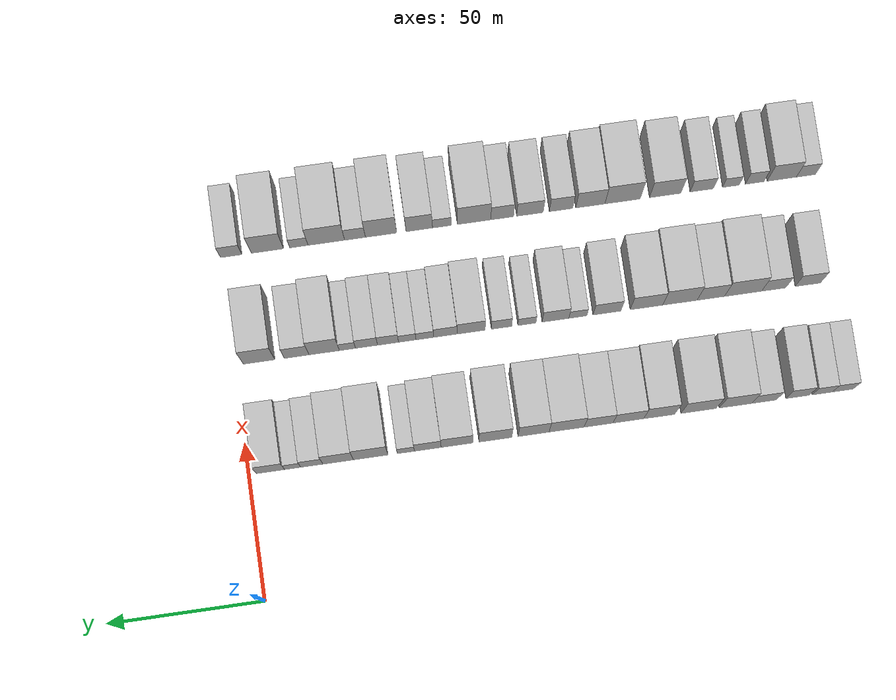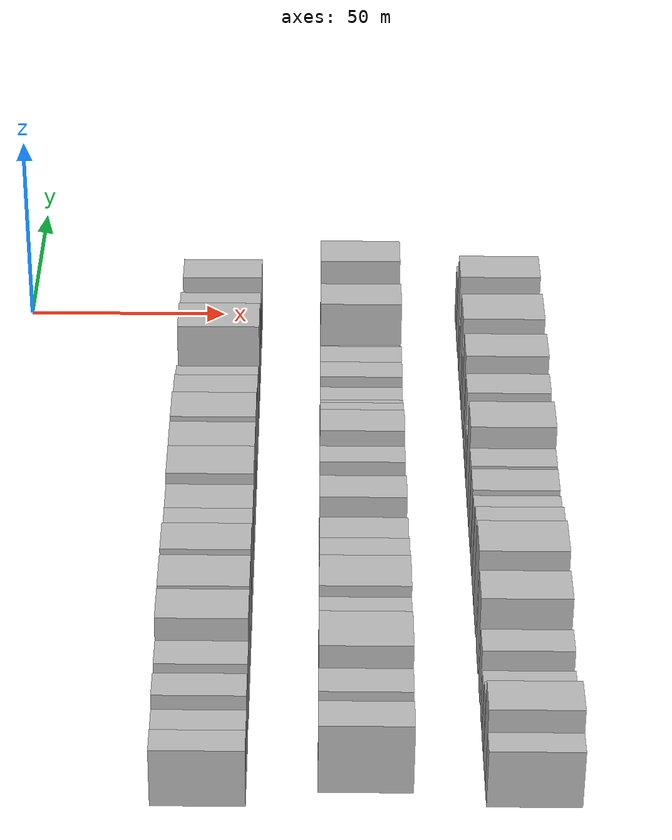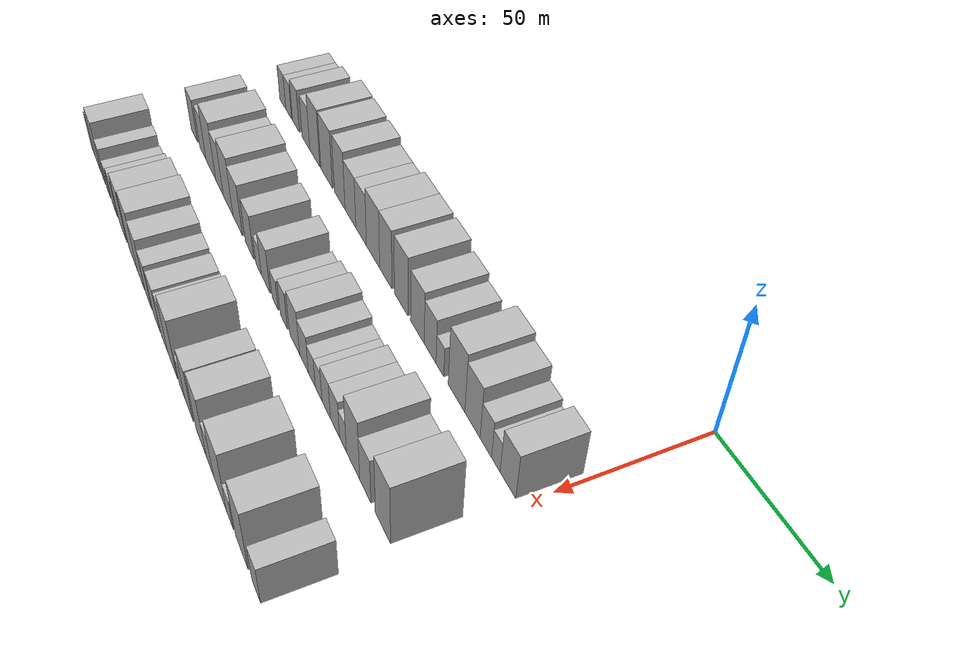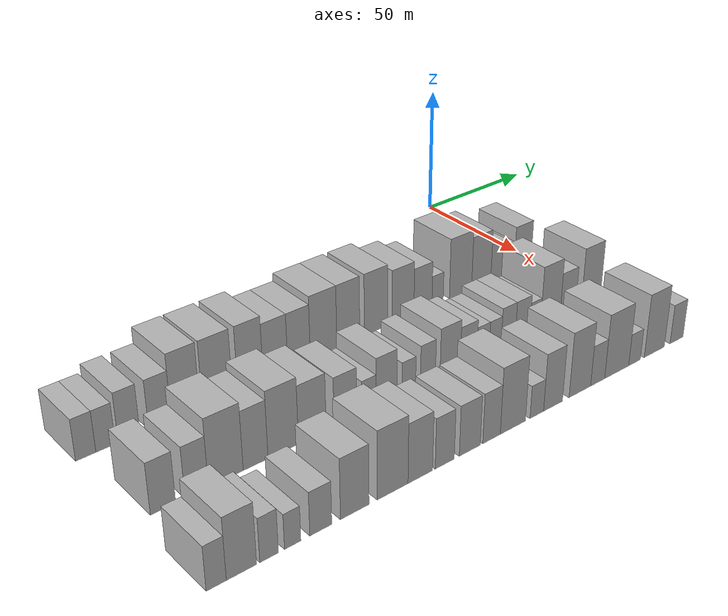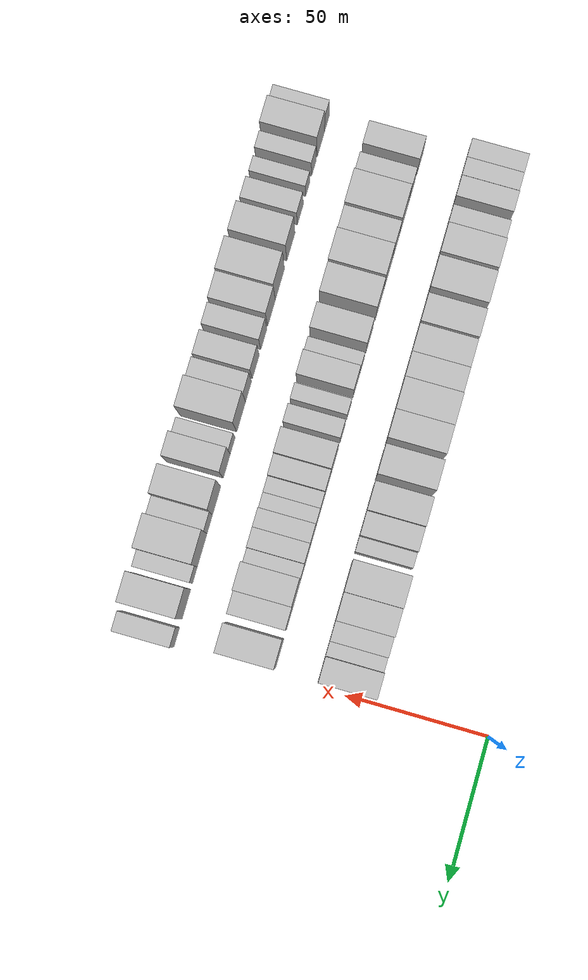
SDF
<sdf version="1.6">
 <world name="default">
  <model name="building_22">
   <static>1</static>
   <pose>50.0000 -188.7874 0 0.000000 0.000000 0.000000</pose>
   <link name="link">
    <pose>0 0 7.50 0 0 0</pose>
    <collision name="collision"><geometry><box><size>20.0000 6.6657 15.0000</size></box></geometry></collision>
    <visual name="visual">
     <cast_shadows>0</cast_shadows>
     <geometry><box><size>20.0000 6.6657 15.0000</size></box></geometry>
     <material>
      <script>
       <uri>model://HANNAS_wall/materials/scripts</uri>
       <uri>model://HANNAS_wall/materials/textures</uri>
       <name>vrc/HANNAS_wall</name>
      </script>
     </material>
    </visual>
   </link>
  </model>
  <model name="building_23">
   <static>1</static>
   <pose>50.0000 -182.2172 0 0.000000 0.000000 0.000000</pose>
   <link name="link">
    <pose>0 0 7.50 0 0 0</pose>
    <collision name="collision"><geometry><box><size>20.0000 6.4747 15.0000</size></box></geometry></collision>
    <visual name="visual">
     <cast_shadows>0</cast_shadows>
     <geometry><box><size>20.0000 6.4747 15.0000</size></box></geometry>
     <material>
      <script>
       <uri>model://HANNAS_wall/materials/scripts</uri>
       <uri>model://HANNAS_wall/materials/textures</uri>
       <name>vrc/HANNAS_wall</name>
      </script>
     </material>
    </visual>
   </link>
  </model>
  <model name="building_24">
   <static>1</static>
   <pose>50.0000 -174.2768 0 0.000000 0.000000 0.000000</pose>
   <link name="link">
    <pose>0 0 9.00 0 0 0</pose>
    <collision name="collision"><geometry><box><size>20.0000 7.4062 18.0000</size></box></geometry></collision>
    <visual name="visual">
     <cast_shadows>0</cast_shadows>
     <geometry><box><size>20.0000 7.4062 18.0000</size></box></geometry>
     <material>
      <script>
       <uri>model://HANNAS_wall/materials/scripts</uri>
       <uri>model://HANNAS_wall/materials/textures</uri>
       <name>vrc/HANNAS_wall</name>
      </script>
     </material>
    </visual>
   </link>
  </model>
  <model name="building_25">
   <static>1</static>
   <pose>50.0000 -163.5895 0 0.000000 0.000000 0.000000</pose>
   <link name="link">
    <pose>0 0 9.00 0 0 0</pose>
    <collision name="collision"><geometry><box><size>20.0000 7.9683 18.0000</size></box></geometry></collision>
    <visual name="visual">
     <cast_shadows>0</cast_shadows>
     <geometry><box><size>20.0000 7.9683 18.0000</size></box></geometry>
     <material>
      <script>
       <uri>model://HANNAS_wall/materials/scripts</uri>
       <uri>model://HANNAS_wall/materials/textures</uri>
       <name>vrc/HANNAS_wall</name>
      </script>
     </material>
    </visual>
   </link>
  </model>
  <model name="building_26">
   <static>1</static>
   <pose>50.0000 -154.4490 0 0.000000 0.000000 0.000000</pose>
   <link name="link">
    <pose>0 0 12.00 0 0 0</pose>
    <collision name="collision"><geometry><box><size>20.0000 10.3128 24.0000</size></box></geometry></collision>
    <visual name="visual">
     <cast_shadows>0</cast_shadows>
     <geometry><box><size>20.0000 10.3128 24.0000</size></box></geometry>
     <material>
      <script>
       <uri>model://HANNAS_wall/materials/scripts</uri>
       <uri>model://HANNAS_wall/materials/textures</uri>
       <name>vrc/HANNAS_wall</name>
      </script>
     </material>
    </visual>
   </link>
  </model>
  <model name="building_27">
   <static>1</static>
   <pose>50.0000 -142.6936 0 0.000000 0.000000 0.000000</pose>
   <link name="link">
    <pose>0 0 12.00 0 0 0</pose>
    <collision name="collision"><geometry><box><size>20.0000 11.1979 24.0000</size></box></geometry></collision>
    <visual name="visual">
     <cast_shadows>0</cast_shadows>
     <geometry><box><size>20.0000 11.1979 24.0000</size></box></geometry>
     <material>
      <script>
       <uri>model://HANNAS_wall/materials/scripts</uri>
       <uri>model://HANNAS_wall/materials/textures</uri>
       <name>vrc/HANNAS_wall</name>
      </script>
     </material>
    </visual>
   </link>
  </model>
  <model name="building_28">
   <static>1</static>
   <pose>50.0000 -130.1656 0 0.000000 0.000000 0.000000</pose>
   <link name="link">
    <pose>0 0 12.00 0 0 0</pose>
    <collision name="collision"><geometry><box><size>20.0000 9.8582 24.0000</size></box></geometry></collision>
    <visual name="visual">
     <cast_shadows>0</cast_shadows>
     <geometry><box><size>20.0000 9.8582 24.0000</size></box></geometry>
     <material>
      <script>
       <uri>model://HANNAS_wall/materials/scripts</uri>
       <uri>model://HANNAS_wall/materials/textures</uri>
       <name>vrc/HANNAS_wall</name>
      </script>
     </material>
    </visual>
   </link>
  </model>
  <model name="building_29">
   <static>1</static>
   <pose>50.0000 -120.3408 0 0.000000 0.000000 0.000000</pose>
   <link name="link">
    <pose>0 0 10.50 0 0 0</pose>
    <collision name="collision"><geometry><box><size>20.0000 9.7914 21.0000</size></box></geometry></collision>
    <visual name="visual">
     <cast_shadows>0</cast_shadows>
     <geometry><box><size>20.0000 9.7914 21.0000</size></box></geometry>
     <material>
      <script>
       <uri>model://HANNAS_wall/materials/scripts</uri>
       <uri>model://HANNAS_wall/materials/textures</uri>
       <name>vrc/HANNAS_wall</name>
      </script>
     </material>
    </visual>
   </link>
  </model>
  <model name="building_30">
   <static>1</static>
   <pose>50.0000 -110.8411 0 0.000000 0.000000 0.000000</pose>
   <link name="link">
    <pose>0 0 10.50 0 0 0</pose>
    <collision name="collision"><geometry><box><size>20.0000 9.2081 21.0000</size></box></geometry></collision>
    <visual name="visual">
     <cast_shadows>0</cast_shadows>
     <geometry><box><size>20.0000 9.2081 21.0000</size></box></geometry>
     <material>
      <script>
       <uri>model://HANNAS_wall/materials/scripts</uri>
       <uri>model://HANNAS_wall/materials/textures</uri>
       <name>vrc/HANNAS_wall</name>
      </script>
     </material>
    </visual>
   </link>
  </model>
  <model name="building_31">
   <static>1</static>
   <pose>50.0000 -100.6707 0 0.000000 0.000000 0.000000</pose>
   <link name="link">
    <pose>0 0 12.00 0 0 0</pose>
    <collision name="collision"><geometry><box><size>20.0000 11.1326 24.0000</size></box></geometry></collision>
    <visual name="visual">
     <cast_shadows>0</cast_shadows>
     <geometry><box><size>20.0000 11.1326 24.0000</size></box></geometry>
     <material>
      <script>
       <uri>model://HANNAS_wall/materials/scripts</uri>
       <uri>model://HANNAS_wall/materials/textures</uri>
       <name>vrc/HANNAS_wall</name>
      </script>
     </material>
    </visual>
   </link>
  </model>
  <model name="building_32">
   <static>1</static>
   <pose>50.0000 -90.1724 0 0.000000 0.000000 0.000000</pose>
   <link name="link">
    <pose>0 0 12.00 0 0 0</pose>
    <collision name="collision"><geometry><box><size>20.0000 9.8641 24.0000</size></box></geometry></collision>
    <visual name="visual">
     <cast_shadows>0</cast_shadows>
     <geometry><box><size>20.0000 9.8641 24.0000</size></box></geometry>
     <material>
      <script>
       <uri>model://HANNAS_wall/materials/scripts</uri>
       <uri>model://HANNAS_wall/materials/textures</uri>
       <name>vrc/HANNAS_wall</name>
      </script>
     </material>
    </visual>
   </link>
  </model>
  <model name="building_33">
   <static>1</static>
   <pose>50.0000 -78.0503 0 0.000000 0.000000 0.000000</pose>
   <link name="link">
    <pose>0 0 12.00 0 0 0</pose>
    <collision name="collision"><geometry><box><size>20.0000 10.3800 24.0000</size></box></geometry></collision>
    <visual name="visual">
     <cast_shadows>0</cast_shadows>
     <geometry><box><size>20.0000 10.3800 24.0000</size></box></geometry>
     <material>
      <script>
       <uri>model://HANNAS_wall/materials/scripts</uri>
       <uri>model://HANNAS_wall/materials/textures</uri>
       <name>vrc/HANNAS_wall</name>
      </script>
     </material>
    </visual>
   </link>
  </model>
  <model name="building_34">
   <static>1</static>
   <pose>50.0000 -65.8512 0 0.000000 0.000000 0.000000</pose>
   <link name="link">
    <pose>0 0 10.50 0 0 0</pose>
    <collision name="collision"><geometry><box><size>20.0000 10.0182 21.0000</size></box></geometry></collision>
    <visual name="visual">
     <cast_shadows>0</cast_shadows>
     <geometry><box><size>20.0000 10.0182 21.0000</size></box></geometry>
     <material>
      <script>
       <uri>model://HANNAS_wall/materials/scripts</uri>
       <uri>model://HANNAS_wall/materials/textures</uri>
       <name>vrc/HANNAS_wall</name>
      </script>
     </material>
    </visual>
   </link>
  </model>
  <model name="building_35">
   <static>1</static>
   <pose>50.0000 -56.6109 0 0.000000 0.000000 0.000000</pose>
   <link name="link">
    <pose>0 0 9.00 0 0 0</pose>
    <collision name="collision"><geometry><box><size>20.0000 8.4623 18.0000</size></box></geometry></collision>
    <visual name="visual">
     <cast_shadows>0</cast_shadows>
     <geometry><box><size>20.0000 8.4623 18.0000</size></box></geometry>
     <material>
      <script>
       <uri>model://HANNAS_wall/materials/scripts</uri>
       <uri>model://HANNAS_wall/materials/textures</uri>
       <name>vrc/HANNAS_wall</name>
      </script>
     </material>
    </visual>
   </link>
  </model>
  <model name="building_36">
   <static>1</static>
   <pose>50.0000 -49.6874 0 0.000000 0.000000 0.000000</pose>
   <link name="link">
    <pose>0 0 6.00 0 0 0</pose>
    <collision name="collision"><geometry><box><size>20.0000 5.3847 12.0000</size></box></geometry></collision>
    <visual name="visual">
     <cast_shadows>0</cast_shadows>
     <geometry><box><size>20.0000 5.3847 12.0000</size></box></geometry>
     <material>
      <script>
       <uri>model://HANNAS_wall/materials/scripts</uri>
       <uri>model://HANNAS_wall/materials/textures</uri>
       <name>vrc/HANNAS_wall</name>
      </script>
     </material>
    </visual>
   </link>
  </model>
  <model name="building_37">
   <static>1</static>
   <pose>50.0000 -38.5183 0 0.000000 0.000000 0.000000</pose>
   <link name="link">
    <pose>0 0 12.00 0 0 0</pose>
    <collision name="collision"><geometry><box><size>20.0000 10.9537 24.0000</size></box></geometry></collision>
    <visual name="visual">
     <cast_shadows>0</cast_shadows>
     <geometry><box><size>20.0000 10.9537 24.0000</size></box></geometry>
     <material>
      <script>
       <uri>model://HANNAS_wall/materials/scripts</uri>
       <uri>model://HANNAS_wall/materials/textures</uri>
       <name>vrc/HANNAS_wall</name>
      </script>
     </material>
    </visual>
   </link>
  </model>
  <model name="building_38">
   <static>1</static>
   <pose>50.0000 -28.2136 0 0.000000 0.000000 0.000000</pose>
   <link name="link">
    <pose>0 0 10.50 0 0 0</pose>
    <collision name="collision"><geometry><box><size>20.0000 9.6557 21.0000</size></box></geometry></collision>
    <visual name="visual">
     <cast_shadows>0</cast_shadows>
     <geometry><box><size>20.0000 9.6557 21.0000</size></box></geometry>
     <material>
      <script>
       <uri>model://HANNAS_wall/materials/scripts</uri>
       <uri>model://HANNAS_wall/materials/textures</uri>
       <name>vrc/HANNAS_wall</name>
      </script>
     </material>
    </visual>
   </link>
  </model>
  <model name="building_39">
   <static>1</static>
   <pose>50.0000 -19.8832 0 0.000000 0.000000 0.000000</pose>
   <link name="link">
    <pose>0 0 7.50 0 0 0</pose>
    <collision name="collision"><geometry><box><size>20.0000 7.0051 15.0000</size></box></geometry></collision>
    <visual name="visual">
     <cast_shadows>0</cast_shadows>
     <geometry><box><size>20.0000 7.0051 15.0000</size></box></geometry>
     <material>
      <script>
       <uri>model://HANNAS_wall/materials/scripts</uri>
       <uri>model://HANNAS_wall/materials/textures</uri>
       <name>vrc/HANNAS_wall</name>
      </script>
     </material>
    </visual>
   </link>
  </model>
  <model name="building_40">
   <static>1</static>
   <pose>50.0000 -13.8369 0 0.000000 0.000000 0.000000</pose>
   <link name="link">
    <pose>0 0 6.00 0 0 0</pose>
    <collision name="collision"><geometry><box><size>20.0000 5.0874 12.0000</size></box></geometry></collision>
    <visual name="visual">
     <cast_shadows>0</cast_shadows>
     <geometry><box><size>20.0000 5.0874 12.0000</size></box></geometry>
     <material>
      <script>
       <uri>model://HANNAS_wall/materials/scripts</uri>
       <uri>model://HANNAS_wall/materials/textures</uri>
       <name>vrc/HANNAS_wall</name>
      </script>
     </material>
    </visual>
   </link>
  </model>
  <model name="building_41">
   <static>1</static>
   <pose>50.0000 -6.8107 0 0.000000 0.000000 0.000000</pose>
   <link name="link">
    <pose>0 0 9.00 0 0 0</pose>
    <collision name="collision"><geometry><box><size>20.0000 8.9651 18.0000</size></box></geometry></collision>
    <visual name="visual">
     <cast_shadows>0</cast_shadows>
     <geometry><box><size>20.0000 8.9651 18.0000</size></box></geometry>
     <material>
      <script>
       <uri>model://HANNAS_wall/materials/scripts</uri>
       <uri>model://HANNAS_wall/materials/textures</uri>
       <name>vrc/HANNAS_wall</name>
      </script>
     </material>
    </visual>
   </link>
  </model>
  <model name="building_104">
   <static>1</static>
   <pose>85.0000 -183.3659 0 0.000000 0.000000 0.000000</pose>
   <link name="link">
    <pose>0 0 9.00 0 0 0</pose>
    <collision name="collision"><geometry><box><size>20.0000 8.1739 18.0000</size></box></geometry></collision>
    <visual name="visual">
     <cast_shadows>0</cast_shadows>
     <geometry><box><size>20.0000 8.1739 18.0000</size></box></geometry>
     <material>
      <script>
       <uri>model://HANNAS_wall/materials/scripts</uri>
       <uri>model://HANNAS_wall/materials/textures</uri>
       <name>vrc/HANNAS_wall</name>
      </script>
     </material>
    </visual>
   </link>
  </model>
  <model name="building_105">
   <static>1</static>
   <pose>85.0000 -172.3877 0 0.000000 0.000000 0.000000</pose>
   <link name="link">
    <pose>0 0 9.00 0 0 0</pose>
    <collision name="collision"><geometry><box><size>20.0000 7.7824 18.0000</size></box></geometry></collision>
    <visual name="visual">
     <cast_shadows>0</cast_shadows>
     <geometry><box><size>20.0000 7.7824 18.0000</size></box></geometry>
     <material>
      <script>
       <uri>model://HANNAS_wall/materials/scripts</uri>
       <uri>model://HANNAS_wall/materials/textures</uri>
       <name>vrc/HANNAS_wall</name>
      </script>
     </material>
    </visual>
   </link>
  </model>
  <model name="building_106">
   <static>1</static>
   <pose>85.0000 -162.5297 0 0.000000 0.000000 0.000000</pose>
   <link name="link">
    <pose>0 0 12.00 0 0 0</pose>
    <collision name="collision"><geometry><box><size>20.0000 11.9335 24.0000</size></box></geometry></collision>
    <visual name="visual">
     <cast_shadows>0</cast_shadows>
     <geometry><box><size>20.0000 11.9335 24.0000</size></box></geometry>
     <material>
      <script>
       <uri>model://HANNAS_wall/materials/scripts</uri>
       <uri>model://HANNAS_wall/materials/textures</uri>
       <name>vrc/HANNAS_wall</name>
      </script>
     </material>
    </visual>
   </link>
  </model>
  <model name="building_107">
   <static>1</static>
   <pose>85.0000 -152.1764 0 0.000000 0.000000 0.000000</pose>
   <link name="link">
    <pose>0 0 10.50 0 0 0</pose>
    <collision name="collision"><geometry><box><size>20.0000 8.7731 21.0000</size></box></geometry></collision>
    <visual name="visual">
     <cast_shadows>0</cast_shadows>
     <geometry><box><size>20.0000 8.7731 21.0000</size></box></geometry>
     <material>
      <script>
       <uri>model://HANNAS_wall/materials/scripts</uri>
       <uri>model://HANNAS_wall/materials/textures</uri>
       <name>vrc/HANNAS_wall</name>
      </script>
     </material>
    </visual>
   </link>
  </model>
  <model name="building_108">
   <static>1</static>
   <pose>85.0000 -142.2412 0 0.000000 0.000000 0.000000</pose>
   <link name="link">
    <pose>0 0 12.00 0 0 0</pose>
    <collision name="collision"><geometry><box><size>20.0000 11.0973 24.0000</size></box></geometry></collision>
    <visual name="visual">
     <cast_shadows>0</cast_shadows>
     <geometry><box><size>20.0000 11.0973 24.0000</size></box></geometry>
     <material>
      <script>
       <uri>model://HANNAS_wall/materials/scripts</uri>
       <uri>model://HANNAS_wall/materials/textures</uri>
       <name>vrc/HANNAS_wall</name>
      </script>
     </material>
    </visual>
   </link>
  </model>
  <model name="building_109">
   <static>1</static>
   <pose>85.0000 -131.4777 0 0.000000 0.000000 0.000000</pose>
   <link name="link">
    <pose>0 0 10.50 0 0 0</pose>
    <collision name="collision"><geometry><box><size>20.0000 10.4296 21.0000</size></box></geometry></collision>
    <visual name="visual">
     <cast_shadows>0</cast_shadows>
     <geometry><box><size>20.0000 10.4296 21.0000</size></box></geometry>
     <material>
      <script>
       <uri>model://HANNAS_wall/materials/scripts</uri>
       <uri>model://HANNAS_wall/materials/textures</uri>
       <name>vrc/HANNAS_wall</name>
      </script>
     </material>
    </visual>
   </link>
  </model>
  <model name="building_110">
   <static>1</static>
   <pose>85.0000 -118.8070 0 0.000000 0.000000 0.000000</pose>
   <link name="link">
    <pose>0 0 9.00 0 0 0</pose>
    <collision name="collision"><geometry><box><size>20.0000 8.9118 18.0000</size></box></geometry></collision>
    <visual name="visual">
     <cast_shadows>0</cast_shadows>
     <geometry><box><size>20.0000 8.9118 18.0000</size></box></geometry>
     <material>
      <script>
       <uri>model://HANNAS_wall/materials/scripts</uri>
       <uri>model://HANNAS_wall/materials/textures</uri>
       <name>vrc/HANNAS_wall</name>
      </script>
     </material>
    </visual>
   </link>
  </model>
  <model name="building_111">
   <static>1</static>
   <pose>85.0000 -109.4890 0 0.000000 0.000000 0.000000</pose>
   <link name="link">
    <pose>0 0 6.00 0 0 0</pose>
    <collision name="collision"><geometry><box><size>20.0000 5.7243 12.0000</size></box></geometry></collision>
    <visual name="visual">
     <cast_shadows>0</cast_shadows>
     <geometry><box><size>20.0000 5.7243 12.0000</size></box></geometry>
     <material>
      <script>
       <uri>model://HANNAS_wall/materials/scripts</uri>
       <uri>model://HANNAS_wall/materials/textures</uri>
       <name>vrc/HANNAS_wall</name>
      </script>
     </material>
    </visual>
   </link>
  </model>
  <model name="building_112">
   <static>1</static>
   <pose>85.0000 -102.3481 0 0.000000 0.000000 0.000000</pose>
   <link name="link">
    <pose>0 0 9.00 0 0 0</pose>
    <collision name="collision"><geometry><box><size>20.0000 8.5574 18.0000</size></box></geometry></collision>
    <visual name="visual">
     <cast_shadows>0</cast_shadows>
     <geometry><box><size>20.0000 8.5574 18.0000</size></box></geometry>
     <material>
      <script>
       <uri>model://HANNAS_wall/materials/scripts</uri>
       <uri>model://HANNAS_wall/materials/textures</uri>
       <name>vrc/HANNAS_wall</name>
      </script>
     </material>
    </visual>
   </link>
  </model>
  <model name="building_113">
   <static>1</static>
   <pose>85.0000 -93.1926 0 0.000000 0.000000 0.000000</pose>
   <link name="link">
    <pose>0 0 6.00 0 0 0</pose>
    <collision name="collision"><geometry><box><size>20.0000 5.7535 12.0000</size></box></geometry></collision>
    <visual name="visual">
     <cast_shadows>0</cast_shadows>
     <geometry><box><size>20.0000 5.7535 12.0000</size></box></geometry>
     <material>
      <script>
       <uri>model://HANNAS_wall/materials/scripts</uri>
       <uri>model://HANNAS_wall/materials/textures</uri>
       <name>vrc/HANNAS_wall</name>
      </script>
     </material>
    </visual>
   </link>
  </model>
  <model name="building_114">
   <static>1</static>
   <pose>85.0000 -85.0716 0 0.000000 0.000000 0.000000</pose>
   <link name="link">
    <pose>0 0 7.50 0 0 0</pose>
    <collision name="collision"><geometry><box><size>20.0000 6.4887 15.0000</size></box></geometry></collision>
    <visual name="visual">
     <cast_shadows>0</cast_shadows>
     <geometry><box><size>20.0000 6.4887 15.0000</size></box></geometry>
     <material>
      <script>
       <uri>model://HANNAS_wall/materials/scripts</uri>
       <uri>model://HANNAS_wall/materials/textures</uri>
       <name>vrc/HANNAS_wall</name>
      </script>
     </material>
    </visual>
   </link>
  </model>
  <model name="building_115">
   <static>1</static>
   <pose>85.0000 -75.3490 0 0.000000 0.000000 0.000000</pose>
   <link name="link">
    <pose>0 0 9.00 0 0 0</pose>
    <collision name="collision"><geometry><box><size>20.0000 8.9566 18.0000</size></box></geometry></collision>
    <visual name="visual">
     <cast_shadows>0</cast_shadows>
     <geometry><box><size>20.0000 8.9566 18.0000</size></box></geometry>
     <material>
      <script>
       <uri>model://HANNAS_wall/materials/scripts</uri>
       <uri>model://HANNAS_wall/materials/textures</uri>
       <name>vrc/HANNAS_wall</name>
      </script>
     </material>
    </visual>
   </link>
  </model>
  <model name="building_116">
   <static>1</static>
   <pose>85.0000 -67.1369 0 0.000000 0.000000 0.000000</pose>
   <link name="link">
    <pose>0 0 7.50 0 0 0</pose>
    <collision name="collision"><geometry><box><size>20.0000 7.4675 15.0000</size></box></geometry></collision>
    <visual name="visual">
     <cast_shadows>0</cast_shadows>
     <geometry><box><size>20.0000 7.4675 15.0000</size></box></geometry>
     <material>
      <script>
       <uri>model://HANNAS_wall/materials/scripts</uri>
       <uri>model://HANNAS_wall/materials/textures</uri>
       <name>vrc/HANNAS_wall</name>
      </script>
     </material>
    </visual>
   </link>
  </model>
  <model name="building_117">
   <static>1</static>
   <pose>85.0000 -60.5700 0 0.000000 0.000000 0.000000</pose>
   <link name="link">
    <pose>0 0 6.00 0 0 0</pose>
    <collision name="collision"><geometry><box><size>20.0000 5.6663 12.0000</size></box></geometry></collision>
    <visual name="visual">
     <cast_shadows>0</cast_shadows>
     <geometry><box><size>20.0000 5.6663 12.0000</size></box></geometry>
     <material>
      <script>
       <uri>model://HANNAS_wall/materials/scripts</uri>
       <uri>model://HANNAS_wall/materials/textures</uri>
       <name>vrc/HANNAS_wall</name>
      </script>
     </material>
    </visual>
   </link>
  </model>
  <model name="building_118">
   <static>1</static>
   <pose>85.0000 -54.9641 0 0.000000 0.000000 0.000000</pose>
   <link name="link">
    <pose>0 0 6.00 0 0 0</pose>
    <collision name="collision"><geometry><box><size>20.0000 5.5456 12.0000</size></box></geometry></collision>
    <visual name="visual">
     <cast_shadows>0</cast_shadows>
     <geometry><box><size>20.0000 5.5456 12.0000</size></box></geometry>
     <material>
      <script>
       <uri>model://HANNAS_wall/materials/scripts</uri>
       <uri>model://HANNAS_wall/materials/textures</uri>
       <name>vrc/HANNAS_wall</name>
      </script>
     </material>
    </visual>
   </link>
  </model>
  <model name="building_119">
   <static>1</static>
   <pose>85.0000 -48.8436 0 0.000000 0.000000 0.000000</pose>
   <link name="link">
    <pose>0 0 7.50 0 0 0</pose>
    <collision name="collision"><geometry><box><size>20.0000 6.6953 15.0000</size></box></geometry></collision>
    <visual name="visual">
     <cast_shadows>0</cast_shadows>
     <geometry><box><size>20.0000 6.6953 15.0000</size></box></geometry>
     <material>
      <script>
       <uri>model://HANNAS_wall/materials/scripts</uri>
       <uri>model://HANNAS_wall/materials/textures</uri>
       <name>vrc/HANNAS_wall</name>
      </script>
     </material>
    </visual>
   </link>
  </model>
  <model name="building_120">
   <static>1</static>
   <pose>85.0000 -41.9793 0 0.000000 0.000000 0.000000</pose>
   <link name="link">
    <pose>0 0 7.50 0 0 0</pose>
    <collision name="collision"><geometry><box><size>20.0000 7.0333 15.0000</size></box></geometry></collision>
    <visual name="visual">
     <cast_shadows>0</cast_shadows>
     <geometry><box><size>20.0000 7.0333 15.0000</size></box></geometry>
     <material>
      <script>
       <uri>model://HANNAS_wall/materials/scripts</uri>
       <uri>model://HANNAS_wall/materials/textures</uri>
       <name>vrc/HANNAS_wall</name>
      </script>
     </material>
    </visual>
   </link>
  </model>
  <model name="building_121">
   <static>1</static>
   <pose>85.0000 -35.8813 0 0.000000 0.000000 0.000000</pose>
   <link name="link">
    <pose>0 0 6.00 0 0 0</pose>
    <collision name="collision"><geometry><box><size>20.0000 5.1628 12.0000</size></box></geometry></collision>
    <visual name="visual">
     <cast_shadows>0</cast_shadows>
     <geometry><box><size>20.0000 5.1628 12.0000</size></box></geometry>
     <material>
      <script>
       <uri>model://HANNAS_wall/materials/scripts</uri>
       <uri>model://HANNAS_wall/materials/textures</uri>
       <name>vrc/HANNAS_wall</name>
      </script>
     </material>
    </visual>
   </link>
  </model>
  <model name="building_122">
   <static>1</static>
   <pose>85.0000 -28.4538 0 0.000000 0.000000 0.000000</pose>
   <link name="link">
    <pose>0 0 12.00 0 0 0</pose>
    <collision name="collision"><geometry><box><size>20.0000 9.6921 24.0000</size></box></geometry></collision>
    <visual name="visual">
     <cast_shadows>0</cast_shadows>
     <geometry><box><size>20.0000 9.6921 24.0000</size></box></geometry>
     <material>
      <script>
       <uri>model://HANNAS_wall/materials/scripts</uri>
       <uri>model://HANNAS_wall/materials/textures</uri>
       <name>vrc/HANNAS_wall</name>
      </script>
     </material>
    </visual>
   </link>
  </model>
  <model name="building_123">
   <static>1</static>
   <pose>85.0000 -19.6806 0 0.000000 0.000000 0.000000</pose>
   <link name="link">
    <pose>0 0 9.00 0 0 0</pose>
    <collision name="collision"><geometry><box><size>20.0000 7.8543 18.0000</size></box></geometry></collision>
    <visual name="visual">
     <cast_shadows>0</cast_shadows>
     <geometry><box><size>20.0000 7.8543 18.0000</size></box></geometry>
     <material>
      <script>
       <uri>model://HANNAS_wall/materials/scripts</uri>
       <uri>model://HANNAS_wall/materials/textures</uri>
       <name>vrc/HANNAS_wall</name>
      </script>
     </material>
    </visual>
   </link>
  </model>
  <model name="building_124">
   <static>1</static>
   <pose>85.0000 -7.7280 0 0.000000 0.000000 0.000000</pose>
   <link name="link">
    <pose>0 0 12.00 0 0 0</pose>
    <collision name="collision"><geometry><box><size>20.0000 10.0509 24.0000</size></box></geometry></collision>
    <visual name="visual">
     <cast_shadows>0</cast_shadows>
     <geometry><box><size>20.0000 10.0509 24.0000</size></box></geometry>
     <material>
      <script>
       <uri>model://HANNAS_wall/materials/scripts</uri>
       <uri>model://HANNAS_wall/materials/textures</uri>
       <name>vrc/HANNAS_wall</name>
      </script>
     </material>
    </visual>
   </link>
  </model>
  <model name="building_187">
   <static>1</static>
   <pose>120.0000 -188.4807 0 0.000000 0.000000 0.000000</pose>
   <link name="link">
    <pose>0 0 7.50 0 0 0</pose>
    <collision name="collision"><geometry><box><size>20.0000 6.1618 15.0000</size></box></geometry></collision>
    <visual name="visual">
     <cast_shadows>0</cast_shadows>
     <geometry><box><size>20.0000 6.1618 15.0000</size></box></geometry>
     <material>
      <script>
       <uri>model://HANNAS_wall/materials/scripts</uri>
       <uri>model://HANNAS_wall/materials/textures</uri>
       <name>vrc/HANNAS_wall</name>
      </script>
     </material>
    </visual>
   </link>
  </model>
  <model name="building_188">
   <static>1</static>
   <pose>120.0000 -180.6556 0 0.000000 0.000000 0.000000</pose>
   <link name="link">
    <pose>0 0 10.50 0 0 0</pose>
    <collision name="collision"><geometry><box><size>20.0000 9.4883 21.0000</size></box></geometry></collision>
    <visual name="visual">
     <cast_shadows>0</cast_shadows>
     <geometry><box><size>20.0000 9.4883 21.0000</size></box></geometry>
     <material>
      <script>
       <uri>model://HANNAS_wall/materials/scripts</uri>
       <uri>model://HANNAS_wall/materials/textures</uri>
       <name>vrc/HANNAS_wall</name>
      </script>
     </material>
    </visual>
   </link>
  </model>
  <model name="building_189">
   <static>1</static>
   <pose>120.0000 -171.9056 0 0.000000 0.000000 0.000000</pose>
   <link name="link">
    <pose>0 0 7.50 0 0 0</pose>
    <collision name="collision"><geometry><box><size>20.0000 6.0119 15.0000</size></box></geometry></collision>
    <visual name="visual">
     <cast_shadows>0</cast_shadows>
     <geometry><box><size>20.0000 6.0119 15.0000</size></box></geometry>
     <material>
      <script>
       <uri>model://HANNAS_wall/materials/scripts</uri>
       <uri>model://HANNAS_wall/materials/textures</uri>
       <name>vrc/HANNAS_wall</name>
      </script>
     </material>
    </visual>
   </link>
  </model>
  <model name="building_190">
   <static>1</static>
   <pose>120.0000 -164.1925 0 0.000000 0.000000 0.000000</pose>
   <link name="link">
    <pose>0 0 6.00 0 0 0</pose>
    <collision name="collision"><geometry><box><size>20.0000 5.4143 12.0000</size></box></geometry></collision>
    <visual name="visual">
     <cast_shadows>0</cast_shadows>
     <geometry><box><size>20.0000 5.4143 12.0000</size></box></geometry>
     <material>
      <script>
       <uri>model://HANNAS_wall/materials/scripts</uri>
       <uri>model://HANNAS_wall/materials/textures</uri>
       <name>vrc/HANNAS_wall</name>
      </script>
     </material>
    </visual>
   </link>
  </model>
  <model name="building_191">
   <static>1</static>
   <pose>120.0000 -154.7398 0 0.000000 0.000000 0.000000</pose>
   <link name="link">
    <pose>0 0 7.50 0 0 0</pose>
    <collision name="collision"><geometry><box><size>20.0000 7.4911 15.0000</size></box></geometry></collision>
    <visual name="visual">
     <cast_shadows>0</cast_shadows>
     <geometry><box><size>20.0000 7.4911 15.0000</size></box></geometry>
     <material>
      <script>
       <uri>model://HANNAS_wall/materials/scripts</uri>
       <uri>model://HANNAS_wall/materials/textures</uri>
       <name>vrc/HANNAS_wall</name>
      </script>
     </material>
    </visual>
   </link>
  </model>
  <model name="building_192">
   <static>1</static>
   <pose>120.0000 -142.9219 0 0.000000 0.000000 0.000000</pose>
   <link name="link">
    <pose>0 0 10.50 0 0 0</pose>
    <collision name="collision"><geometry><box><size>20.0000 10.1447 21.0000</size></box></geometry></collision>
    <visual name="visual">
     <cast_shadows>0</cast_shadows>
     <geometry><box><size>20.0000 10.1447 21.0000</size></box></geometry>
     <material>
      <script>
       <uri>model://HANNAS_wall/materials/scripts</uri>
       <uri>model://HANNAS_wall/materials/textures</uri>
       <name>vrc/HANNAS_wall</name>
      </script>
     </material>
    </visual>
   </link>
  </model>
  <model name="building_193">
   <static>1</static>
   <pose>120.0000 -129.1635 0 0.000000 0.000000 0.000000</pose>
   <link name="link">
    <pose>0 0 12.00 0 0 0</pose>
    <collision name="collision"><geometry><box><size>20.0000 11.3720 24.0000</size></box></geometry></collision>
    <visual name="visual">
     <cast_shadows>0</cast_shadows>
     <geometry><box><size>20.0000 11.3720 24.0000</size></box></geometry>
     <material>
      <script>
       <uri>model://HANNAS_wall/materials/scripts</uri>
       <uri>model://HANNAS_wall/materials/textures</uri>
       <name>vrc/HANNAS_wall</name>
      </script>
     </material>
    </visual>
   </link>
  </model>
  <model name="building_194">
   <static>1</static>
   <pose>120.0000 -118.7780 0 0.000000 0.000000 0.000000</pose>
   <link name="link">
    <pose>0 0 10.50 0 0 0</pose>
    <collision name="collision"><geometry><box><size>20.0000 9.3990 21.0000</size></box></geometry></collision>
    <visual name="visual">
     <cast_shadows>0</cast_shadows>
     <geometry><box><size>20.0000 9.3990 21.0000</size></box></geometry>
     <material>
      <script>
       <uri>model://HANNAS_wall/materials/scripts</uri>
       <uri>model://HANNAS_wall/materials/textures</uri>
       <name>vrc/HANNAS_wall</name>
      </script>
     </material>
    </visual>
   </link>
  </model>
  <model name="building_195">
   <static>1</static>
   <pose>120.0000 -109.3144 0 0.000000 0.000000 0.000000</pose>
   <link name="link">
    <pose>0 0 9.00 0 0 0</pose>
    <collision name="collision"><geometry><box><size>20.0000 7.5283 18.0000</size></box></geometry></collision>
    <visual name="visual">
     <cast_shadows>0</cast_shadows>
     <geometry><box><size>20.0000 7.5283 18.0000</size></box></geometry>
     <material>
      <script>
       <uri>model://HANNAS_wall/materials/scripts</uri>
       <uri>model://HANNAS_wall/materials/textures</uri>
       <name>vrc/HANNAS_wall</name>
      </script>
     </material>
    </visual>
   </link>
  </model>
  <model name="building_196">
   <static>1</static>
   <pose>120.0000 -99.2833 0 0.000000 0.000000 0.000000</pose>
   <link name="link">
    <pose>0 0 9.00 0 0 0</pose>
    <collision name="collision"><geometry><box><size>20.0000 8.5339 18.0000</size></box></geometry></collision>
    <visual name="visual">
     <cast_shadows>0</cast_shadows>
     <geometry><box><size>20.0000 8.5339 18.0000</size></box></geometry>
     <material>
      <script>
       <uri>model://HANNAS_wall/materials/scripts</uri>
       <uri>model://HANNAS_wall/materials/textures</uri>
       <name>vrc/HANNAS_wall</name>
      </script>
     </material>
    </visual>
   </link>
  </model>
  <model name="building_197">
   <static>1</static>
   <pose>120.0000 -90.3519 0 0.000000 0.000000 0.000000</pose>
   <link name="link">
    <pose>0 0 9.00 0 0 0</pose>
    <collision name="collision"><geometry><box><size>20.0000 7.3289 18.0000</size></box></geometry></collision>
    <visual name="visual">
     <cast_shadows>0</cast_shadows>
     <geometry><box><size>20.0000 7.3289 18.0000</size></box></geometry>
     <material>
      <script>
       <uri>model://HANNAS_wall/materials/scripts</uri>
       <uri>model://HANNAS_wall/materials/textures</uri>
       <name>vrc/HANNAS_wall</name>
      </script>
     </material>
    </visual>
   </link>
  </model>
  <model name="building_198">
   <static>1</static>
   <pose>120.0000 -81.3096 0 0.000000 0.000000 0.000000</pose>
   <link name="link">
    <pose>0 0 12.00 0 0 0</pose>
    <collision name="collision"><geometry><box><size>20.0000 10.7557 24.0000</size></box></geometry></collision>
    <visual name="visual">
     <cast_shadows>0</cast_shadows>
     <geometry><box><size>20.0000 10.7557 24.0000</size></box></geometry>
     <material>
      <script>
       <uri>model://HANNAS_wall/materials/scripts</uri>
       <uri>model://HANNAS_wall/materials/textures</uri>
       <name>vrc/HANNAS_wall</name>
      </script>
     </material>
    </visual>
   </link>
  </model>
  <model name="building_199">
   <static>1</static>
   <pose>120.0000 -70.9341 0 0.000000 0.000000 0.000000</pose>
   <link name="link">
    <pose>0 0 6.00 0 0 0</pose>
    <collision name="collision"><geometry><box><size>20.0000 5.9953 12.0000</size></box></geometry></collision>
    <visual name="visual">
     <cast_shadows>0</cast_shadows>
     <geometry><box><size>20.0000 5.9953 12.0000</size></box></geometry>
     <material>
      <script>
       <uri>model://HANNAS_wall/materials/scripts</uri>
       <uri>model://HANNAS_wall/materials/textures</uri>
       <name>vrc/HANNAS_wall</name>
      </script>
     </material>
    </visual>
   </link>
  </model>
  <model name="building_200">
   <static>1</static>
   <pose>120.0000 -63.6798 0 0.000000 0.000000 0.000000</pose>
   <link name="link">
    <pose>0 0 10.50 0 0 0</pose>
    <collision name="collision"><geometry><box><size>20.0000 8.5133 21.0000</size></box></geometry></collision>
    <visual name="visual">
     <cast_shadows>0</cast_shadows>
     <geometry><box><size>20.0000 8.5133 21.0000</size></box></geometry>
     <material>
      <script>
       <uri>model://HANNAS_wall/materials/scripts</uri>
       <uri>model://HANNAS_wall/materials/textures</uri>
       <name>vrc/HANNAS_wall</name>
      </script>
     </material>
    </visual>
   </link>
  </model>
  <model name="building_201">
   <static>1</static>
   <pose>120.0000 -51.3829 0 0.000000 0.000000 0.000000</pose>
   <link name="link">
    <pose>0 0 12.00 0 0 0</pose>
    <collision name="collision"><geometry><box><size>20.0000 10.0804 24.0000</size></box></geometry></collision>
    <visual name="visual">
     <cast_shadows>0</cast_shadows>
     <geometry><box><size>20.0000 10.0804 24.0000</size></box></geometry>
     <material>
      <script>
       <uri>model://HANNAS_wall/materials/scripts</uri>
       <uri>model://HANNAS_wall/materials/textures</uri>
       <name>vrc/HANNAS_wall</name>
      </script>
     </material>
    </visual>
   </link>
  </model>
  <model name="building_202">
   <static>1</static>
   <pose>120.0000 -43.0009 0 0.000000 0.000000 0.000000</pose>
   <link name="link">
    <pose>0 0 7.50 0 0 0</pose>
    <collision name="collision"><geometry><box><size>20.0000 6.6836 15.0000</size></box></geometry></collision>
    <visual name="visual">
     <cast_shadows>0</cast_shadows>
     <geometry><box><size>20.0000 6.6836 15.0000</size></box></geometry>
     <material>
      <script>
       <uri>model://HANNAS_wall/materials/scripts</uri>
       <uri>model://HANNAS_wall/materials/textures</uri>
       <name>vrc/HANNAS_wall</name>
      </script>
     </material>
    </visual>
   </link>
  </model>
  <model name="building_203">
   <static>1</static>
   <pose>120.0000 -33.7831 0 0.000000 0.000000 0.000000</pose>
   <link name="link">
    <pose>0 0 12.00 0 0 0</pose>
    <collision name="collision"><geometry><box><size>20.0000 11.7520 24.0000</size></box></geometry></collision>
    <visual name="visual">
     <cast_shadows>0</cast_shadows>
     <geometry><box><size>20.0000 11.7520 24.0000</size></box></geometry>
     <material>
      <script>
       <uri>model://HANNAS_wall/materials/scripts</uri>
       <uri>model://HANNAS_wall/materials/textures</uri>
       <name>vrc/HANNAS_wall</name>
      </script>
     </material>
    </visual>
   </link>
  </model>
  <model name="building_204">
   <static>1</static>
   <pose>120.0000 -24.9901 0 0.000000 0.000000 0.000000</pose>
   <link name="link">
    <pose>0 0 6.00 0 0 0</pose>
    <collision name="collision"><geometry><box><size>20.0000 5.8340 12.0000</size></box></geometry></collision>
    <visual name="visual">
     <cast_shadows>0</cast_shadows>
     <geometry><box><size>20.0000 5.8340 12.0000</size></box></geometry>
     <material>
      <script>
       <uri>model://HANNAS_wall/materials/scripts</uri>
       <uri>model://HANNAS_wall/materials/textures</uri>
       <name>vrc/HANNAS_wall</name>
      </script>
     </material>
    </visual>
   </link>
  </model>
  <model name="building_205">
   <static>1</static>
   <pose>120.0000 -14.9005 0 0.000000 0.000000 0.000000</pose>
   <link name="link">
    <pose>0 0 12.00 0 0 0</pose>
    <collision name="collision"><geometry><box><size>20.0000 10.3451 24.0000</size></box></geometry></collision>
    <visual name="visual">
     <cast_shadows>0</cast_shadows>
     <geometry><box><size>20.0000 10.3451 24.0000</size></box></geometry>
     <material>
      <script>
       <uri>model://HANNAS_wall/materials/scripts</uri>
       <uri>model://HANNAS_wall/materials/textures</uri>
       <name>vrc/HANNAS_wall</name>
      </script>
     </material>
    </visual>
   </link>
  </model>
  <model name="building_206">
   <static>1</static>
   <pose>120.0000 -3.2859 0 0.000000 0.000000 0.000000</pose>
   <link name="link">
    <pose>0 0 7.50 0 0 0</pose>
    <collision name="collision"><geometry><box><size>20.0000 6.8841 15.0000</size></box></geometry></collision>
    <visual name="visual">
     <cast_shadows>0</cast_shadows>
     <geometry><box><size>20.0000 6.8841 15.0000</size></box></geometry>
     <material>
      <script>
       <uri>model://HANNAS_wall/materials/scripts</uri>
       <uri>model://HANNAS_wall/materials/textures</uri>
       <name>vrc/HANNAS_wall</name>
      </script>
     </material>
    </visual>
   </link>
  </model>
 </world>
</sdf>
